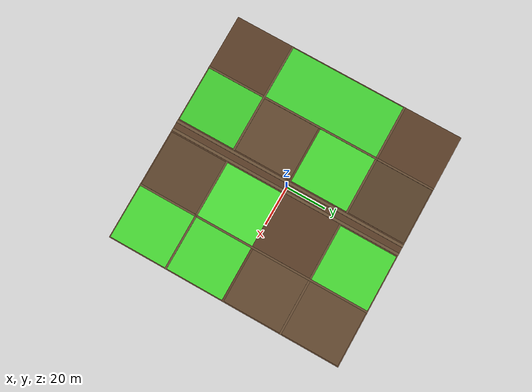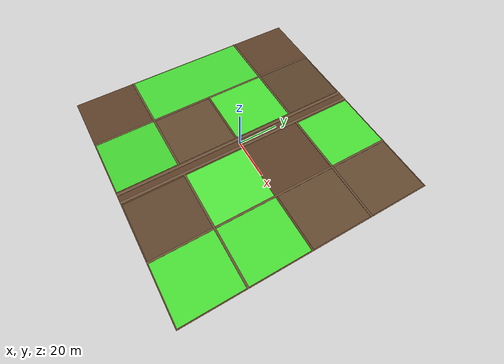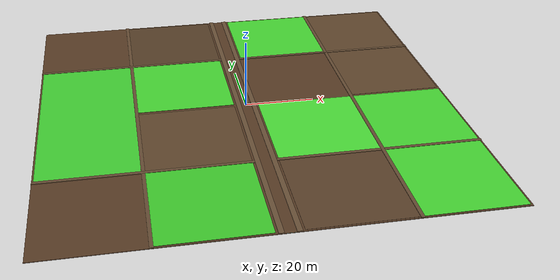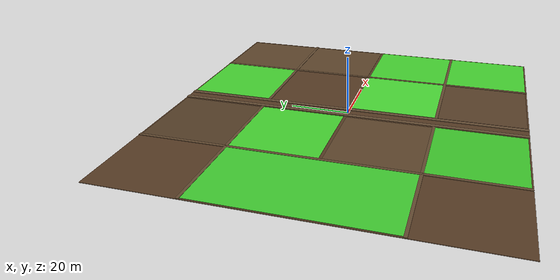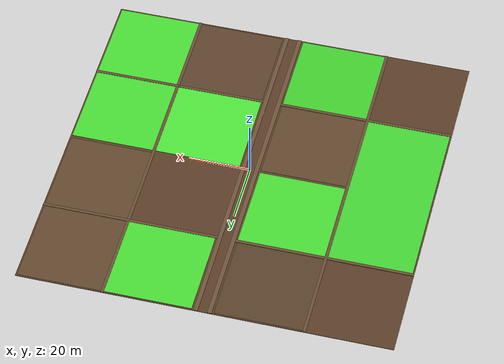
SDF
<?xml version="1.0"?>
<sdf version="1.9">

  <world name="rice_field">
    <physics name="1ms" type="ode">
      <max_step_size>0.001</max_step_size>
      <real_time_factor>1.0</real_time_factor>
    </physics>

    <scene>
      <ambient>0.6 0.6 0.6 1.0</ambient>
      <background>0.8 0.9 1.0 1.0</background>
      <shadows>true</shadows>
    </scene>

    <light name="sun" type="directional">
      <cast_shadows>true</cast_shadows>
      <pose>0 0 50 0 0 0</pose>
      <diffuse>0.95 0.95 0.9 1</diffuse>
      <specular>0.3 0.3 0.3 1</specular>
      <direction>-0.3 0.2 -1.0</direction>
    </light>

    <model name="terrain_base">
      <static>true</static>

      <!-- // soil 120X120m -->
      <link name="base_soil">
        <collision name="ground_col">
          <geometry>
            <box><size>120 120 0.2</size></box>
          </geometry>
        </collision>
        <visual name="ground_vis">
          <geometry>
            <box><size>120 120 0.2</size></box>
          </geometry>
          <material>
            <ambient>0.25 0.18 0.12 1</ambient>
            <diffuse>0.35 0.24 0.15 1</diffuse>
            <roughness>0.9</roughness>
          </material>
        </visual>
      </link>

      <!-- Raised Dirt Bunds & Canal Banks -->
      <link name="bunds_and_banks">
        <!-- Canal Left Bank (Continuous Along Y-axis) -->
        <visual name="canal_bank_left">
          <pose>-2.2 0 0.16 0 0 0</pose>
          <geometry><box><size>1.4 120 0.32</size></box></geometry>
          <material>
            <ambient>0.32 0.24 0.16 1</ambient>
            <diffuse>0.42 0.32 0.22 1</diffuse>
          </material>
        </visual>

        <!-- Canal Right Bank (Continuous Along Y-axis) -->
        <visual name="canal_bank_right">
          <pose>2.2 0 0.16 0 0 0</pose>
          <geometry><box><size>1.4 120 0.32</size></box></geometry>
          <material>
            <ambient>0.32 0.24 0.16 1</ambient>
            <diffuse>0.42 0.32 0.22 1</diffuse>
          </material>
        </visual>

        <!-- North Horizontal Dividers (Separated: Left and Right of Canal) -->
        <visual name="bund_h1_left">
          <pose>-31.45 30 0.15 0 0 0</pose>
          <geometry><box><size>57.1 1.0 0.3</size></box></geometry>
          <material>
            <ambient>0.3 0.22 0.14 1</ambient>
            <diffuse>0.4 0.3 0.2 1</diffuse>
          </material>
        </visual>

        <visual name="bund_h1_right">
          <pose>31.45 30 0.15 0 0 0</pose>
          <geometry><box><size>57.1 1.0 0.3</size></box></geometry>
          <material>
            <ambient>0.3 0.22 0.14 1</ambient>
            <diffuse>0.4 0.3 0.2 1</diffuse>
          </material>
        </visual>

        <visual name="bund_h2_left">
          <pose>-31.45 -30 0.15 0 0 0</pose>
          <geometry><box><size>57.1 1.0 0.3</size></box></geometry>
          <material>
            <ambient>0.3 0.22 0.14 1</ambient>
            <diffuse>0.4 0.3 0.2 1</diffuse>
          </material>
        </visual>

        <visual name="bund_h2_right">
          <pose>31.45 -30 0.15 0 0 0</pose>
          <geometry><box><size>57.1 1.0 0.3</size></box></geometry>
          <material>
            <ambient>0.3 0.22 0.14 1</ambient>
            <diffuse>0.4 0.3 0.2 1</diffuse>
          </material>
        </visual>

        <!-- Longitudinal Outer Field Dividers -->
        <visual name="bund_v_left">
          <pose>-32 0 0.15 0 0 0</pose>
          <geometry><box><size>1.0 120 0.3</size></box></geometry>
          <material>
            <ambient>0.3 0.22 0.14 1</ambient>
            <diffuse>0.4 0.3 0.2 1</diffuse>
          </material>
        </visual>

        <visual name="bund_right">
          <pose>32 0 0.15 0 0 0</pose>
          <geometry><box><size>1.0 120 0.3</size></box></geometry>
          <material>
            <ambient>0.3 0.22 0.14 1</ambient>
            <diffuse>0.4 0.3 0.2 1</diffuse>
          </material>
        </visual>
      </link>
    </model>

    <model name="canal">
      <static>true</static>
      <pose>0 0 0.03 0 0 0</pose>
      <link name="water_link">
        <visual name="water_vis">
          <geometry>
            <box><size>3.0 120 0.08</size></box>
          </geometry>
          <material>
            <ambient>0.15 0.42 0.35 0.95</ambient>
            <diffuse>0.20 0.52 0.45 0.95</diffuse>
            <specular>0.85 0.85 0.85 1</specular>
          </material>
        </visual>
      </link>
    </model>

    <!-- Lush Green Rice Fields -->
    <model name="green_rice_fields">
      <static>true</static>
      <link name="fields">
        <!-- Inner Left Fields bordering Canal -->
        <visual name="rice_inner_left_north">
          <pose>-17.5 15 0.15 0 0 0</pose>
          <geometry><box><size>28 29 0.1</size></box></geometry>
          <material>
            <ambient>0.2 0.65 0.15 1</ambient>
            <diffuse>0.28 0.85 0.2 1</diffuse>
          </material>
        </visual>

        <visual name="rice_inner_left_south">
          <pose>-17.5 -45 0.15 0 0 0</pose>
          <geometry><box><size>28 29 0.1</size></box></geometry>
          <material>
            <ambient>0.18 0.6 0.14 1</ambient>
            <diffuse>0.25 0.8 0.18 1</diffuse>S
          </material>
        </visual>

        <!-- Inner Right Fields bordering Canal -->
        <visual name="rice_inner_right_north">
          <pose>17.5 45 0.15 0 0 0</pose>
          <geometry><box><size>28 29 0.1</size></box></geometry>
          <material>
            <ambient>0.2 0.65 0.15 1</ambient>
            <diffuse>0.28 0.85 0.2 1</diffuse>
          </material>
        </visual>

        <visual name="rice_inner_right_mid">
          <pose>17.5 -15 0.15 0 0 0</pose>
          <geometry><box><size>28 29 0.1</size></box></geometry>
          <material>
            <ambient>0.22 0.7 0.18 1</ambient>
            <diffuse>0.3 0.88 0.22 1</diffuse>
          </material>
        </visual>

        <!-- Outer Lateral Fields -->
        <visual name="rice_outer_far_left">
          <pose>-46 0 0.15 0 0 0</pose>
          <geometry><box><size>27 59 0.1</size></box></geometry>
          <material>
            <ambient>0.19 0.62 0.16 1</ambient>
            <diffuse>0.26 0.82 0.2 1</diffuse>
          </material>
        </visual>

        <visual name="rice_outer_far_right_south">
          <pose>46 -30 0.15 0 0 0</pose>
          <geometry><box><size>27 59 0.1</size></box></geometry>
          <material>
            <ambient>0.2 0.65 0.15 1</ambient>
            <diffuse>0.28 0.85 0.2 1</diffuse>
          </material>
        </visual>
      </link>
    </model>

    //soil
    <model name="bare_soil_plots">
      <static>true</static>
      <link name="plots">
        <visual name="bare_inner_left_mid">
          <pose>-17.5 -15 0.11 0 0 0</pose>
          <geometry><box><size>28 29 0.05</size></box></geometry>
          <material>
            <ambient>0.28 0.2 0.13 1</ambient>
            <diffuse>0.38 0.28 0.18 1</diffuse>
          </material>
        </visual>

        <visual name="bare_inner_left_north_far">
          <pose>-17.5 45 0.11 0 0 0</pose>
          <geometry><box><size>28 29 0.05</size></box></geometry>
          <material>
            <ambient>0.24 0.18 0.12 1</ambient>
            <diffuse>0.34 0.25 0.16 1</diffuse>
          </material>
        </visual>

        <visual name="bare_inner_right_south">
          <pose>17.5 -45 0.11 0 0 0</pose>
          <geometry><box><size>28 29 0.05</size></box></geometry>
          <material>
            <ambient>0.26 0.19 0.12 1</ambient>
            <diffuse>0.36 0.26 0.17 1</diffuse>
          </material>
        </visual>

        <visual name="bare_outer_far_right_north">
          <pose>46 30 0.11 0 0 0</pose>
          <geometry><box><size>27 59 0.05</size></box></geometry>
          <material>
            <ambient>0.28 0.2 0.13 1</ambient>
            <diffuse>0.38 0.28 0.18 1</diffuse>
          </material>
        </visual>
      </link>
    </model>

  </world>
</sdf>
